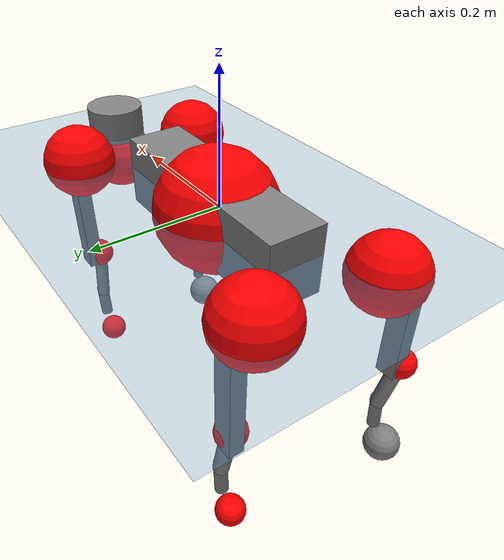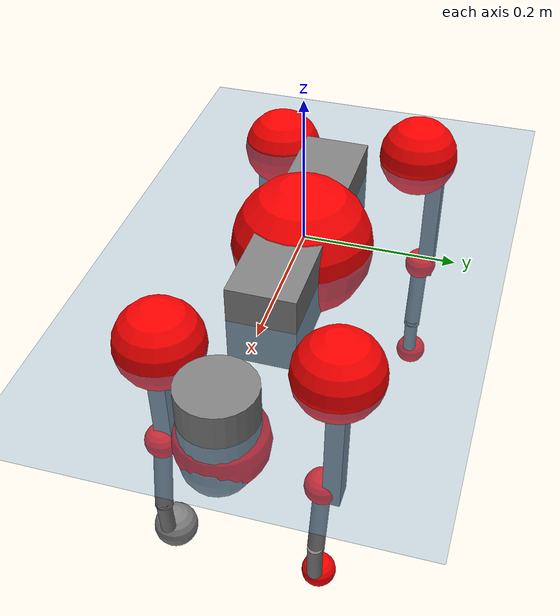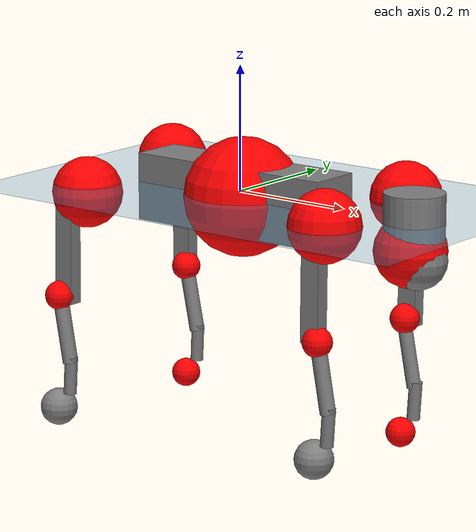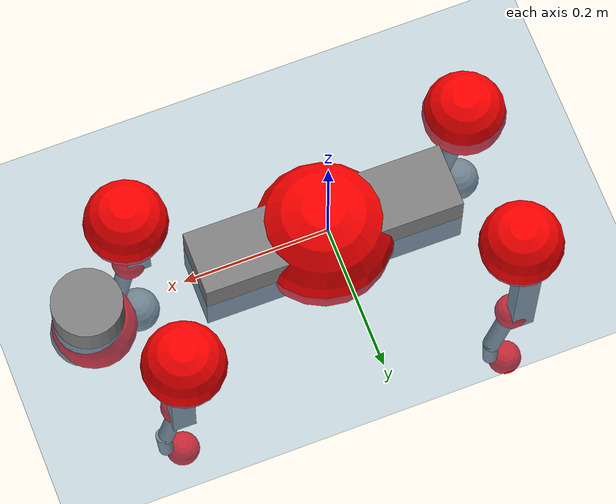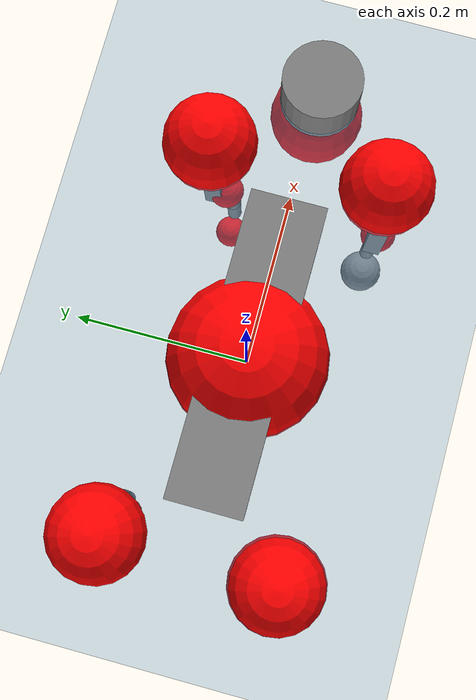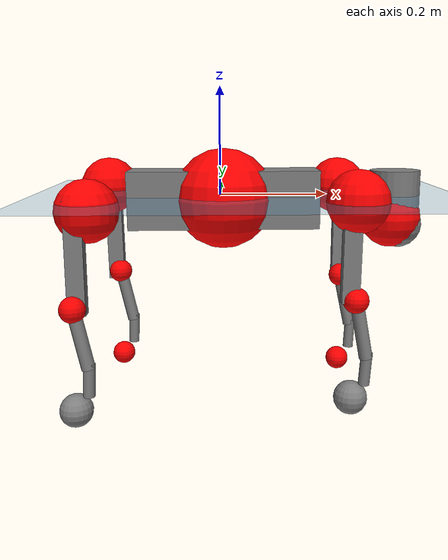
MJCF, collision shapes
<mujoco model="go2">
  <compiler angle="radian" assetdir="assets" balanceinertia="true" inertiafromgeom="false"/>

  <option timestep="0.005" density="1.2" viscosity="2e-05"/>

  <size nkey="1"/>

  <visual>
    <quality shadowsize="8192"/>
    <map shadowclip="0.5"/>
  </visual>

  <default>
    <default class="/">
      <geom contype="0" conaffinity="0" group="1" solref="-1000 -80"/>
      <site size="0.01 0.005 0.005" group="5"/>
      <general forcelimited="true" biastype="affine" gainprm="20" biasprm="0 -20 -0.5"/>
      <default class="go2">
        <joint armature="0.01" damping="0.01" frictionloss="0.2"/>
        <geom condim="1" margin="0.001"/>
        <default class="visual">
          <geom type="mesh" group="2"/>
        </default>
        <default class="collision">
          <geom group="3"/>
          <default class="foot">
            <geom size="0.022 0 0" condim="6" priority="1" friction="0.8 0.02 0.01" solimp="0.015 1 0.022"/>
          </default>
        </default>
        <default class="reward_collision_sphere">
          <geom group="5" rgba="1 0 0 1"/>
        </default>
      </default>
    </default>
  </default>

  <asset>
    <texture type="skybox" colorspace="auto" name="//unnamed_texture_0" builtin="gradient" rgb1="0.95 0.95 0.95" rgb2="0.95 0.95 0.95" width="100" height="600"/>
    <texture type="2d" colorspace="auto" name="texplane" builtin="checker" rgb1="0.345 0.575 0.748" rgb2="0.345 0.575 0.748" markrgb="1 1 1" width="512" height="512"/>
    <material name="MatPlane" class="/" texture="texplane" texuniform="true" texrepeat="2 2" specular="0.9"/>
    <material name="metal" class="/" rgba="0.9 0.95 0.95 1"/>
    <material name="black" class="/" rgba="0 0 0 1"/>
    <material name="white" class="/"/>
    <material name="gray" class="/" rgba="0.671705 0.692426 0.77427 1"/>
    <mesh name="base_0" class="/" file="base_0.obj"/>
    <mesh name="base_1" class="/" file="base_1.obj"/>
    <mesh name="base_2" class="/" file="base_2.obj"/>
    <mesh name="base_3" class="/" file="base_3.obj"/>
    <mesh name="base_4" class="/" file="base_4.obj"/>
    <mesh name="hip_0" class="/" file="hip_0.obj"/>
    <mesh name="hip_1" class="/" file="hip_1.obj"/>
    <mesh name="thigh_0" class="/" file="thigh_0.obj"/>
    <mesh name="thigh_1" class="/" file="thigh_1.obj"/>
    <mesh name="thigh_mirror_0" class="/" file="thigh_mirror_0.obj"/>
    <mesh name="thigh_mirror_1" class="/" file="thigh_mirror_1.obj"/>
    <mesh name="calf_0" class="/" file="calf_0.obj"/>
    <mesh name="calf_1" class="/" file="calf_1.obj"/>
    <mesh name="calf_mirror_0" class="/" file="calf_mirror_0.obj"/>
    <mesh name="calf_mirror_1" class="/" file="calf_mirror_1.obj"/>
    <mesh name="foot" class="/" file="foot.obj"/>
  </asset>

  <worldbody>
    <geom name="floor" class="/" size="100 100 0.125" type="plane" group="0" material="MatPlane"/>
    <light name="toplight_shadow" class="/" pos="0 0 5" dir="0.0990148 0.0990148 -0.990148" type="directional" ambient="0.04 0.04 0.04" diffuse="0.55 0.55 0.55" specular="0.12 0.12 0.12"/>
    <light name="toplight_fill" class="/" pos="0 0 5" dir="0.0990148 0.0990148 -0.990148" type="directional" castshadow="false" ambient="0.04 0.04 0.04" diffuse="0.3 0.3 0.3" specular="0.08 0.08 0.08"/>
    <body name="trunk" childclass="go2" pos="0.00630554 -0.000121343 -0.00761988" quat="0.99999 -0.00331655 -0.0021118 -0.00207834">
      <inertial pos="0.0415928 0.0143713 0.00403642" quat="-0.00268034 0.732169 -0.0106798 0.681034" mass="4.50923" diaginertia="0.198019 0.0376069 0.0109041"/>
      <joint name="//unnamed_joint_0" type="free" armature="0" damping="0" frictionloss="0"/>
      <geom name="//unnamed_geom_1" class="visual" material="black" mesh="base_0"/>
      <geom name="//unnamed_geom_2" class="visual" material="black" mesh="base_1"/>
      <geom name="//unnamed_geom_3" class="visual" material="black" mesh="base_2"/>
      <geom name="//unnamed_geom_4" class="visual" material="white" mesh="base_3"/>
      <geom name="//unnamed_geom_5" class="visual" material="gray" mesh="base_4"/>
      <geom name="trunk_1" class="collision" size="0.178009 0.0442419 0.053942" type="box"/>
      <geom name="trunk_2" class="collision" size="0.0473176 0.0425858" pos="0.325197 0 0.00869145" type="cylinder"/>
      <geom name="trunk_3" class="collision" size="0.0444785" pos="0.334325 0 -0.0521487"/>
      <geom name="//unnamed_geom_9" class="reward_collision_sphere" size="0.0946352"/>
      <geom name="//unnamed_geom_10" class="reward_collision_sphere" size="0.0567811" pos="0.319491 0 -0.0391115"/>
      <site name="imu" pos="-0.106906 -0.0032371 0.114231" size="0.00946352"/>
      <camera name="track" pos="0 -1.65774 0" quat="0.707107 0.707107 0 0" mode="trackcom"/>
      <camera name="ego_camera" pos="0.356005 0 0.0391115" quat="-0.5 -0.5 0.5 0.5"/>
      <body name="FL_hip" pos="0.233568 0.0519571 0.0120758" quat="0.999998 -0.000760959 -0.00161146 0.00111753">
        <inertial pos="-0.00627853 0.0143647 0.0031511" quat="0.496457 0.500017 0.506243 0.497223" mass="0.615361" diaginertia="0.00205 0.000332067 0.000290427"/>
        <joint name="FL_hip_joint" pos="0 0 0" axis="0.999617 0.0267677 0.00699752" stiffness="0.0575118" range="-1.0553 0.876029" armature="0.00845163" damping="0" frictionloss="0.298701"/>
        <geom name="//unnamed_geom_11" class="visual" material="metal" mesh="hip_0"/>
        <geom name="//unnamed_geom_12" class="visual" material="gray" mesh="hip_1"/>
        <geom name="//unnamed_geom_13" class="collision" size="0.0435322 0.018927" pos="0 0.0663096 0" quat="0.707107 0.707107 0 0" type="cylinder"/>
        <geom name="//unnamed_geom_14" class="reward_collision_sphere" size="0.0567811" pos="0 0.0580209 0"/>
        <body name="FL_thigh" pos="0.0102824 0.0628225 -0.00931536" quat="0.999972 -0.00511585 0.00461156 -0.00287859">
          <inertial pos="-0.00636362 -0.0190254 -0.038483" quat="0.859797 0.0854737 -0.047695 0.501167" mass="1.16939" diaginertia="0.0119387 0.00288072 0.000414425"/>
          <joint name="FL_thigh_joint" pos="0 0 0" axis="0.00215575 0.999556 0.0297346" stiffness="0.0110663" range="-1.86079 3.26163" armature="0.0122863" damping="0" frictionloss="0.287052"/>
          <geom name="//unnamed_geom_15" class="visual" material="metal" mesh="thigh_0"/>
          <geom name="//unnamed_geom_16" class="visual" material="gray" mesh="thigh_1"/>
          <geom name="//unnamed_geom_17" class="collision" size="0.100786 0.0115928 0.016088" pos="0 0 -0.0925639" quat="0.707107 0 0.707107 0" type="box"/>
          <body name="FL_calf" pos="0.000420287 -0.0148655 -0.180373" quat="0.999996 -0.000737132 -0.00122982 -0.00257099">
            <inertial pos="0.0081255 -0.00597749 -0.113652" quat="0.706899 0.00449285 -0.00900272 0.707243" mass="0.215287" diaginertia="0.00358948 0.000581349 2.60632e-05"/>
            <joint name="FL_calf_joint" pos="0 0 0" axis="0.00948853 0.999842 -0.0150101" stiffness="0.0706757" range="-2.95042 -0.863259" armature="0.00629606" damping="0" frictionloss="0.176839"/>
            <geom name="//unnamed_geom_18" class="visual" material="gray" mesh="calf_0"/>
            <geom name="//unnamed_geom_19" class="visual" material="black" mesh="calf_1"/>
            <geom name="FL_calf0" class="collision" size="0.0113562 0.0567811" pos="0.00912832 0 -0.0521487" quat="0.994493 0 -0.104807 0" type="cylinder"/>
            <geom name="//unnamed_geom_21" class="collision" size="0.0104099 0.0307564" pos="0.0228208 0 -0.128633" quat="0.999688 0 0.0249974 0" type="cylinder"/>
            <geom name="//unnamed_geom_22" class="visual" pos="0 0 -0.185128" quat="1 0 0 0" material="black" mesh="foot"/>
            <geom name="FL_foot" class="foot" size="0.0201753" pos="-0.00228208 0 -0.185128"/>
            <geom name="//unnamed_geom_24" class="reward_collision_sphere" size="0.0236588"/>
            <geom name="//unnamed_geom_25" class="reward_collision_sphere" size="0.0236588" pos="-0.00228208 0 -0.185128"/>
            <site name="FL_foot" class="foot" pos="-0.00228208 0 -0.185128" size="0.00946352"/>
          </body>
        </body>
      </body>
      <body name="FR_hip" pos="0.236566 -0.0462601 0.00561466" quat="1 -5.67886e-05 7.06802e-05 -0.000200788">
        <inertial pos="0.00494148 0.0161454 0.0113106" quat="0.444664 0.476484 0.550735 0.521467" mass="0.561085" diaginertia="0.00187338 0.000177019 0.000259174"/>
        <joint name="FR_hip_joint" pos="0 0 0" axis="0.997782 -0.0533023 0.039876" range="-1.1427 1.04574" armature="0.00822224" damping="0.0648297" frictionloss="0.114442"/>
        <geom name="//unnamed_geom_26" class="visual" pos="0 -3.50855e-10 -1.50489e-08" quat="4.63268e-05 1 0 0" material="metal" mesh="hip_0"/>
        <geom name="//unnamed_geom_27" class="visual" pos="0 -5.68778e-10 3.72217e-08" quat="4.63268e-05 1 0 0" material="gray" mesh="hip_1"/>
        <geom name="//unnamed_geom_28" class="collision" size="0.0435322 0.018927" pos="0 -0.0663096 0" quat="0.707107 0.707107 0 0" type="cylinder"/>
        <geom name="//unnamed_geom_29" class="reward_collision_sphere" size="0.0567811" pos="0 -0.0580209 0"/>
        <body name="FR_thigh" pos="-0.00993646 -0.0692909 0.013858" quat="0.999976 0.00329308 0.00608289 0.000474561">
          <inertial pos="-0.0199003 0.0254627 -0.0180902" quat="0.539926 -0.00997253 0.0353208 0.840912" mass="0.869443" diaginertia="0.0139593 0.0028536 0.000373618"/>
          <joint name="FR_thigh_joint" pos="0 0 0" axis="0.0200833 -0.999688 0.0148445" stiffness="0.0057635" range="-3.64289 1.67717" armature="0.0142566" damping="0.00156249" frictionloss="0.108435"/>
          <geom name="//unnamed_geom_30" class="visual" material="metal" mesh="thigh_mirror_0"/>
          <geom name="//unnamed_geom_31" class="visual" material="gray" mesh="thigh_mirror_1"/>
          <geom name="//unnamed_geom_32" class="collision" size="0.100786 0.0115928 0.016088" pos="0 0 -0.0925639" quat="0.707107 0 0.707107 0" type="box"/>
          <body name="FR_calf" pos="0.0106117 -0.00402416 -0.189563" quat="0.999987 -8.53994e-05 0.00196198 -0.00479392">
            <inertial pos="0.0200758 -0.000134418 -0.123376" quat="0.663772 0.0536804 0.0265844 0.745532" mass="0.148538" diaginertia="0.00215612 0.000532885 2.18892e-05"/>
            <joint name="FR_calf_joint" pos="0 0 0" axis="-0.00836049 -0.999944 0.00656385" stiffness="0.0770175" range="1.15471 2.93701" armature="0.00251412" damping="0" frictionloss="0.104621"/>
            <geom name="//unnamed_geom_33" class="visual" material="gray" mesh="calf_mirror_0"/>
            <geom name="//unnamed_geom_34" class="visual" material="black" mesh="calf_mirror_1"/>
            <geom name="FR_calf0" class="collision" size="0.0123026 0.0567811" pos="0.0114104 0 -0.0521487" quat="0.995004 0 -0.0998334 0" type="cylinder"/>
            <geom name="//unnamed_geom_36" class="collision" size="0.0104099 0.0307564" pos="0.0228208 0 -0.128633" quat="0.999688 0 0.0249974 0" type="cylinder"/>
            <geom name="//unnamed_geom_37" class="visual" pos="0 0 -0.185128" quat="1 0 0 0" material="black" mesh="foot"/>
            <geom name="FR_foot" class="foot" size="0.0308913" pos="-0.00228208 0 -0.185128"/>
            <geom name="//unnamed_geom_39" class="reward_collision_sphere" size="0.0236588"/>
            <geom name="//unnamed_geom_40" class="reward_collision_sphere" size="0.0236588" pos="-0.00228208 0 -0.185128"/>
            <site name="FR_foot" class="foot" pos="-0.00228208 0 -0.185128" size="0.00946352"/>
          </body>
        </body>
      </body>
      <body name="RL_hip" pos="-0.235329 0.0504604 0.0142395" quat="0.999999 -0.000140753 -0.000650084 -0.000902547">
        <inertial pos="0.00552607 -0.0101976 0.0161947" quat="0.467427 0.549979 0.480208 0.498433" mass="0.46151" diaginertia="0.00106487 0.000200066 0.000214457"/>
        <joint name="RL_hip_joint" pos="0 0 0" axis="-0.997786 0.0661544 -0.00689366" stiffness="0.0428185" range="-1.0252 0.894023" armature="0.0104968" damping="0.0829343" frictionloss="0.191421"/>
        <geom name="//unnamed_geom_41" class="visual" pos="-2.36865e-09 0 -4.64309e-07" quat="4.63268e-05 0 1 0" material="metal" mesh="hip_0"/>
        <geom name="//unnamed_geom_42" class="visual" pos="-3.83986e-09 0 -4.11776e-07" quat="4.63268e-05 0 1 0" material="gray" mesh="hip_1"/>
        <geom name="//unnamed_geom_43" class="collision" size="0.0435322 0.018927" pos="0 0.0663096 0" quat="0.707107 0.707107 0 0" type="cylinder"/>
        <geom name="//unnamed_geom_44" class="reward_collision_sphere" size="0.0567811" pos="0 0.0580209 0"/>
        <body name="RL_thigh" pos="0.000396959 0.0877323 -0.008933" quat="0.999992 -0.000728109 -0.0037793 0.00099721">
          <inertial pos="0.0132146 -0.0259687 -0.012126" quat="0.828879 0.0818684 -0.0157926 0.553179" mass="1.2406" diaginertia="0.0160396 0.00223498 0.000451626"/>
          <joint name="RL_thigh_joint" pos="0 0 0" axis="-0.000324896 1 -0.000170346" range="-0.330724 4.76691" armature="0.00691614" damping="0.0712526" frictionloss="0.187718"/>
          <geom name="//unnamed_geom_45" class="visual" material="metal" mesh="thigh_0"/>
          <geom name="//unnamed_geom_46" class="visual" material="gray" mesh="thigh_1"/>
          <geom name="//unnamed_geom_47" class="collision" size="0.100786 0.0115928 0.016088" pos="0 0 -0.0925639" quat="0.707107 0 0.707107 0" type="box"/>
          <body name="RL_calf" pos="0.00827157 -0.00801085 -0.177726" quat="1 -0.000487916 0.000186708 -0.000167215">
            <inertial pos="-0.00249059 -0.0151281 -0.115618" quat="0.733055 -0.0118638 0.0376532 0.679023" mass="0.158849" diaginertia="0.00257379 0.00036635 1.87363e-05"/>
            <joint name="RL_calf_joint" pos="0 0 0" axis="-0.013895 0.999886 0.00587838" range="-3.00742 -0.600564" armature="0.00204227" damping="0" frictionloss="0.319045"/>
            <geom name="//unnamed_geom_48" class="visual" material="gray" mesh="calf_0"/>
            <geom name="//unnamed_geom_49" class="visual" material="black" mesh="calf_1"/>
            <geom name="RL_calf0" class="collision" size="0.0123026 0.0567811" pos="0.0114104 0 -0.0521487" quat="0.995004 0 -0.0998334 0" type="cylinder"/>
            <geom name="//unnamed_geom_51" class="collision" size="0.0104099 0.0307564" pos="0.0228208 0 -0.128633" quat="0.999688 0 0.0249974 0" type="cylinder"/>
            <geom name="//unnamed_geom_52" class="visual" pos="0 0 -0.185128" quat="1 0 0 0" material="black" mesh="foot"/>
            <geom name="RL_foot" class="foot" size="0.0144433" pos="-0.00228208 0 -0.185128"/>
            <geom name="//unnamed_geom_54" class="reward_collision_sphere" size="0.0236588"/>
            <geom name="//unnamed_geom_55" class="reward_collision_sphere" size="0.0236588" pos="-0.00228208 0 -0.185128"/>
            <site name="RL_foot" class="foot" pos="-0.00228208 0 -0.185128" size="0.00946352"/>
          </body>
        </body>
      </body>
      <body name="RR_hip" pos="-0.2382 -0.0411547 -0.00848519" quat="0.999999 0.000489459 -0.00123734 -0.000496502">
        <inertial pos="0.0168217 -0.0116204 0.0160595" quat="0.486016 0.439279 0.493639 0.571963" mass="0.578093" diaginertia="0.00207645 0.000278597 0.000288387"/>
        <joint name="RR_hip_joint" pos="0 0 0" axis="-0.997073 -0.0678154 -0.0353022" range="-0.750984 0.849121" armature="0.0137216" damping="0.0590859" frictionloss="0.186014"/>
        <geom name="//unnamed_geom_56" class="visual" pos="2.35784e-09 -3.50855e-10 -4.4926e-07" quat="2.14617e-09 4.63268e-05 4.63268e-05 -1" material="metal" mesh="hip_0"/>
        <geom name="//unnamed_geom_57" class="visual" pos="3.86659e-09 -5.68778e-10 -4.48998e-07" quat="2.14617e-09 4.63268e-05 4.63268e-05 -1" material="gray" mesh="hip_1"/>
        <geom name="//unnamed_geom_58" class="collision" size="0.0435322 0.018927" pos="0 -0.0663096 0" quat="0.707107 0.707107 0 0" type="cylinder"/>
        <geom name="//unnamed_geom_59" class="reward_collision_sphere" size="0.0567811" pos="0 -0.0580209 0"/>
        <body name="RR_thigh" pos="-0.0163858 -0.0867864 0.0147448" quat="0.999976 -0.00322402 0.0061227 0.000510873">
          <inertial pos="-0.00630129 0.00791616 -0.0344042" quat="0.551738 -0.0198953 0.0845484 0.829483" mass="1.2874" diaginertia="0.0151905 0.00270805 0.000522096"/>
          <joint name="RR_thigh_joint" pos="0 0 0" axis="-0.00275532 -0.999692 -0.0246769" stiffness="0.0177435" range="-4.75117 0.664794" armature="0.0117864" damping="0" frictionloss="0.194433"/>
          <geom name="//unnamed_geom_60" class="visual" material="metal" mesh="thigh_mirror_0"/>
          <geom name="//unnamed_geom_61" class="visual" material="gray" mesh="thigh_mirror_1"/>
          <geom name="//unnamed_geom_62" class="collision" size="0.100786 0.0115928 0.016088" pos="0 0 -0.0925639" quat="0.707107 0 0.707107 0" type="box"/>
          <body name="RR_calf" pos="-0.00590383 -0.0133496 -0.180451" quat="0.99997 -0.00579385 -0.00505963 0.00115694">
            <inertial pos="-0.00630633 0.00939212 -0.129505" quat="0.721114 -0.0604199 -0.0150896 0.690012" mass="0.193138" diaginertia="0.00329008 0.000563396 2.94271e-05"/>
            <joint name="RR_calf_joint" pos="0 0 0" axis="0.00598822 -0.999274 -0.0376309" range="0.858976 2.42184" armature="0.0100821" damping="0" frictionloss="0.10539"/>
            <geom name="//unnamed_geom_63" class="visual" material="gray" mesh="calf_mirror_0"/>
            <geom name="//unnamed_geom_64" class="visual" material="black" mesh="calf_mirror_1"/>
            <geom name="RR_calf0" class="collision" size="0.0123026 0.0567811" pos="0.0114104 0 -0.0521487" quat="0.995004 0 -0.0998334 0" type="cylinder"/>
            <geom name="//unnamed_geom_66" class="collision" size="0.0104099 0.0307564" pos="0.0228208 0 -0.128633" quat="0.999688 0 0.0249974 0" type="cylinder"/>
            <geom name="//unnamed_geom_67" class="visual" pos="0 0 -0.185128" quat="1 0 0 0" material="black" mesh="foot"/>
            <geom name="RR_foot" class="foot" size="0.0299715" pos="-0.00228208 0 -0.185128"/>
            <geom name="//unnamed_geom_69" class="reward_collision_sphere" size="0.0236588"/>
            <geom name="//unnamed_geom_70" class="reward_collision_sphere" size="0.0236588" pos="-0.00228208 0 -0.185128"/>
            <site name="RR_foot" class="foot" pos="-0.00228208 0 -0.185128" size="0.00946352"/>
          </body>
        </body>
      </body>
    </body>
  </worldbody>

  <contact>
    <pair class="/" geom1="floor" geom2="FL_foot" name="//unnamed_contact_0"/>
    <pair class="/" geom1="floor" geom2="FR_foot" name="//unnamed_contact_1"/>
    <pair class="/" geom1="floor" geom2="RL_foot" name="//unnamed_contact_2"/>
    <pair class="/" geom1="floor" geom2="RR_foot" name="//unnamed_contact_3"/>
  </contact>

  <actuator>
    <general name="FL_hip" class="/" joint="FL_hip_joint" forcerange="-33.3747 33.3747" gainprm="23.8373" biasprm="0 -23.8373 -0.594573"/>
    <general name="FL_thigh" class="/" joint="FL_thigh_joint" forcerange="-35.9757 35.9757" gainprm="23.8373" biasprm="0 -23.8373 -0.594573"/>
    <general name="FL_calf" class="/" joint="FL_calf_joint" forcerange="-55.0328 55.0328" gainprm="23.8373" biasprm="0 -23.8373 -0.594573"/>
    <general name="FR_hip" class="/" joint="FR_hip_joint" forcerange="-21.0044 21.0044" gainprm="23.8373" biasprm="0 -23.8373 -0.594573"/>
    <general name="FR_thigh" class="/" joint="FR_thigh_joint" forcerange="-12.2946 12.2946" gainprm="23.8373" biasprm="0 -23.8373 -0.594573"/>
    <general name="FR_calf" class="/" joint="FR_calf_joint" forcerange="-51.5866 51.5866" gainprm="23.8373" biasprm="0 -23.8373 -0.594573"/>
    <general name="RL_hip" class="/" joint="RL_hip_joint" forcerange="-23.2247 23.2247" gainprm="23.8373" biasprm="0 -23.8373 -0.594573"/>
    <general name="RL_thigh" class="/" joint="RL_thigh_joint" forcerange="-32.8995 32.8995" gainprm="23.8373" biasprm="0 -23.8373 -0.594573"/>
    <general name="RL_calf" class="/" joint="RL_calf_joint" forcerange="-30.4797 30.4797" gainprm="23.8373" biasprm="0 -23.8373 -0.594573"/>
    <general name="RR_hip" class="/" joint="RR_hip_joint" forcerange="-26.032 26.032" gainprm="23.8373" biasprm="0 -23.8373 -0.594573"/>
    <general name="RR_thigh" class="/" joint="RR_thigh_joint" forcerange="-10.4326 10.4326" gainprm="23.8373" biasprm="0 -23.8373 -0.594573"/>
    <general name="RR_calf" class="/" joint="RR_calf_joint" forcerange="-33.9259 33.9259" gainprm="23.8373" biasprm="0 -23.8373 -0.594573"/>
  </actuator>

  <sensor>
    <gyro site="imu" name="imu_angular_velocity"/>
    <velocimeter site="imu" name="imu_linear_velocity"/>
    <framelinvel objtype="site" objname="FL_foot" name="FL_foot_global_linear_velocity"/>
    <framelinvel objtype="site" objname="FR_foot" name="FR_foot_global_linear_velocity"/>
    <framelinvel objtype="site" objname="RL_foot" name="RL_foot_global_linear_velocity"/>
    <framelinvel objtype="site" objname="RR_foot" name="RR_foot_global_linear_velocity"/>
  </sensor>

  <keyframe>
    <key name="home" qpos="0 0 0.325 1 0 0 0 0.1 0.8 -1.5 -0.1 -0.8 1.5 -0.1 0.8 -1.5 0.1 -0.8 1.5"/>
  </keyframe>
</mujoco>
